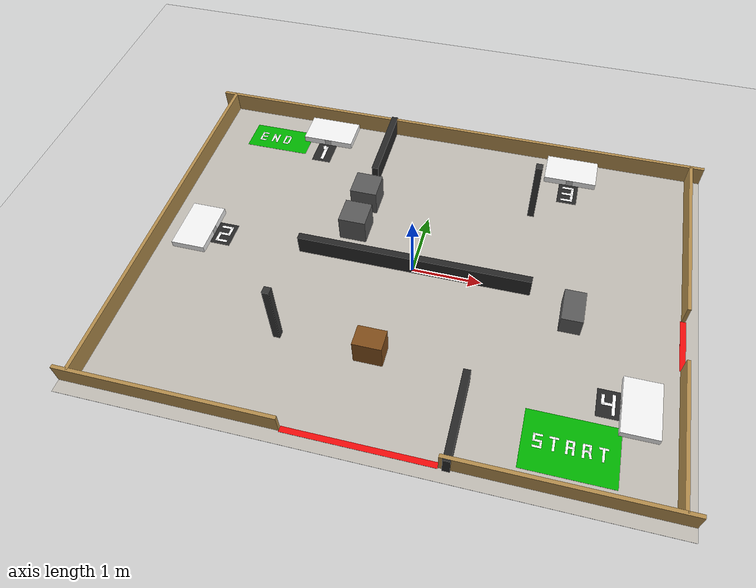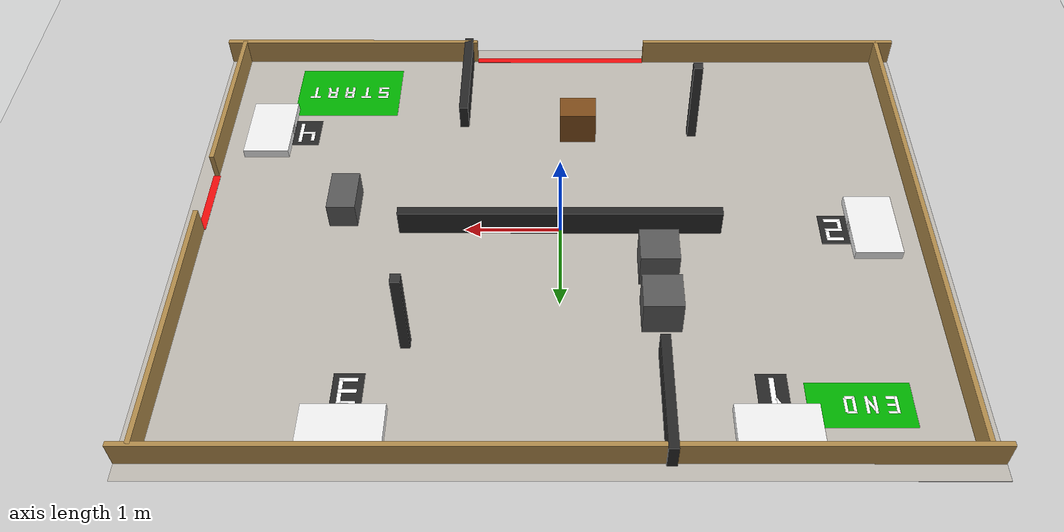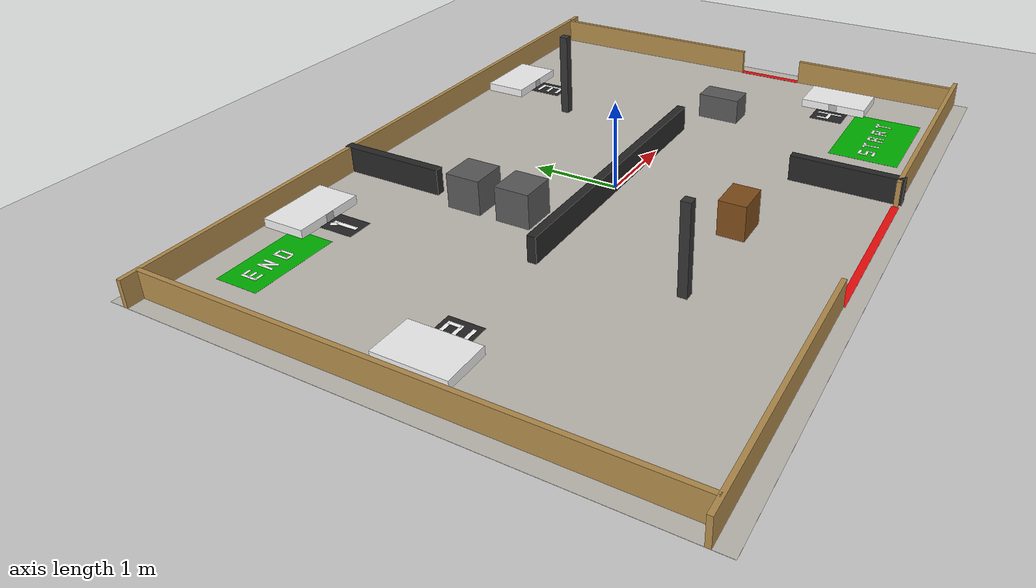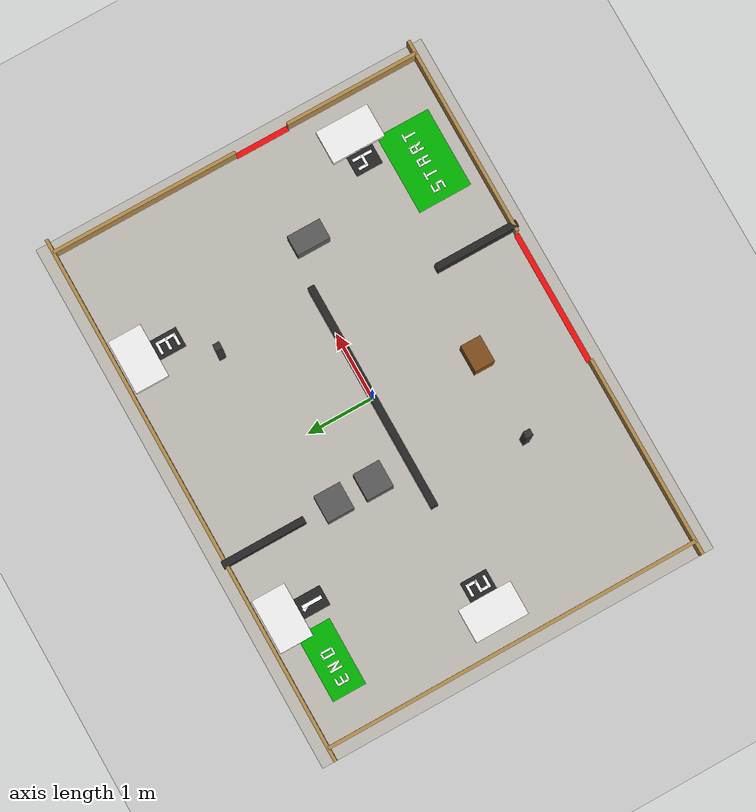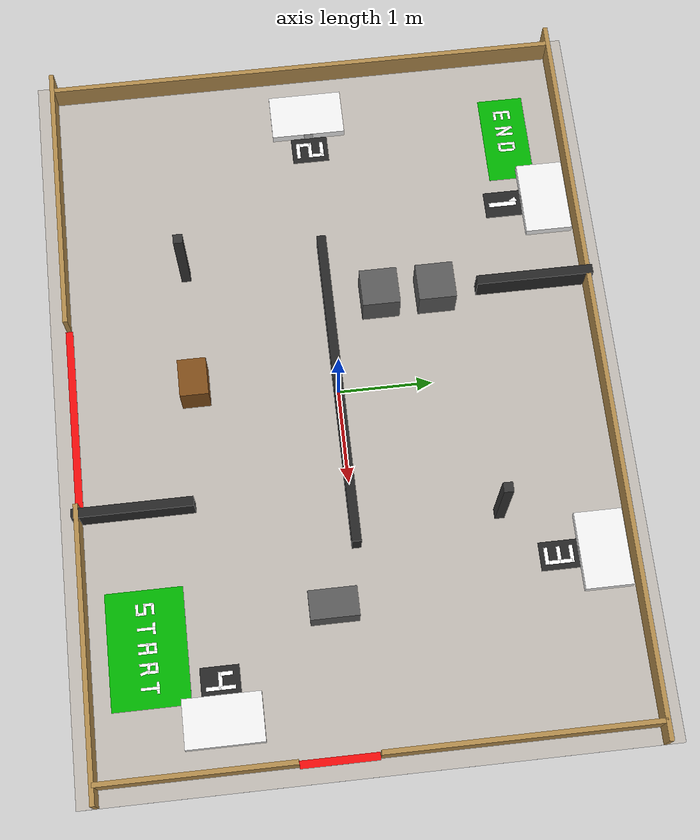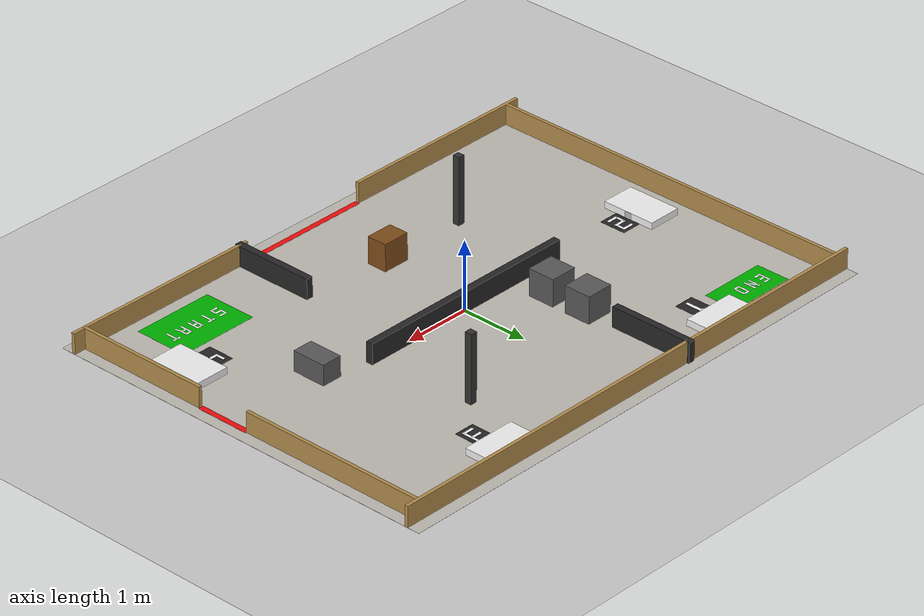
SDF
<sdf version="1.6">
 <world name="robocup_arena">
  <physics type="ode"><max_step_size>0.001</max_step_size><real_time_factor>1</real_time_factor></physics>
  <plugin name="gazebo_ros_state" filename="libgazebo_ros_state.so">
   <ros><namespace>/gazebo</namespace></ros>
   <update_rate>0.0</update_rate>
  </plugin>
  <include><uri>model://sun</uri></include>
  <include><uri>model://ground_plane</uri></include>
  <model name="arena_floor">
   <static>true</static>
   <pose>0 0 0.001 0 0 0</pose>
   <link name="link">
    <visual name="v">
     <geometry><box><size>8 6 0.002</size></box></geometry>
     <material><ambient>0.75 0.73 0.70 1</ambient><diffuse>0.75 0.73 0.70 1</diffuse></material>
    </visual>
   </link>
  </model>
  <model name="wall_north">
   <static>true</static>
   <pose>0 2.8 0.15 0 0 0</pose>
   <link name="link">
    <collision name="c"><geometry><box><size>8 0.05 0.3</size></box></geometry></collision>
    <visual name="v">
     <geometry><box><size>8 0.05 0.3</size></box></geometry>
     <material><ambient>0.7 0.55 0.3 1</ambient><diffuse>0.7 0.55 0.3 1</diffuse></material>
    </visual>
   </link>
  </model>
  <model name="wall_south_left">
   <static>true</static>
   <pose>-2.5 -2.8 0.15 0 0 0</pose>
   <link name="link">
    <collision name="c"><geometry><box><size>3 0.05 0.3</size></box></geometry></collision>
    <visual name="v">
     <geometry><box><size>3 0.05 0.3</size></box></geometry>
     <material><ambient>0.7 0.55 0.3 1</ambient><diffuse>0.7 0.55 0.3 1</diffuse></material>
    </visual>
   </link>
  </model>
  <model name="wall_south_right">
   <static>true</static>
   <pose>2.5 -2.8 0.15 0 0 0</pose>
   <link name="link">
    <collision name="c"><geometry><box><size>3 0.05 0.3</size></box></geometry></collision>
    <visual name="v">
     <geometry><box><size>3 0.05 0.3</size></box></geometry>
     <material><ambient>0.7 0.55 0.3 1</ambient><diffuse>0.7 0.55 0.3 1</diffuse></material>
    </visual>
   </link>
  </model>
  <model name="red_tape_south">
   <static>true</static>
   <pose>0 -2.8 0.003 0 0 0</pose>
   <link name="link">
    <visual name="v">
     <geometry><box><size>2 0.08 0.003</size></box></geometry>
     <material><ambient>0.95 0.05 0.05 1</ambient><diffuse>0.95 0.05 0.05 1</diffuse></material>
    </visual>
   </link>
  </model>
  <model name="wall_east_top">
   <static>true</static>
   <pose>3.8 1.4 0.15 0 0 0</pose>
   <link name="link">
    <collision name="c"><geometry><box><size>0.05 2.8 0.3</size></box></geometry></collision>
    <visual name="v">
     <geometry><box><size>0.05 2.8 0.3</size></box></geometry>
     <material><ambient>0.7 0.55 0.3 1</ambient><diffuse>0.7 0.55 0.3 1</diffuse></material>
    </visual>
   </link>
  </model>
  <model name="wall_east_bottom">
   <static>true</static>
   <pose>3.8 -1.8 0.15 0 0 0</pose>
   <link name="link">
    <collision name="c"><geometry><box><size>0.05 2.0 0.3</size></box></geometry></collision>
    <visual name="v">
     <geometry><box><size>0.05 2.0 0.3</size></box></geometry>
     <material><ambient>0.7 0.55 0.3 1</ambient><diffuse>0.7 0.55 0.3 1</diffuse></material>
    </visual>
   </link>
  </model>
  <model name="red_tape_east">
   <static>true</static>
   <pose>3.8 -0.4 0.003 0 0 1.57</pose>
   <link name="link">
    <visual name="v">
     <geometry><box><size>0.8 0.08 0.003</size></box></geometry>
     <material><ambient>0.95 0.05 0.05 1</ambient><diffuse>0.95 0.05 0.05 1</diffuse></material>
    </visual>
   </link>
  </model>
  <model name="wall_west">
   <static>true</static>
   <pose>-3.8 0 0.15 0 0 0</pose>
   <link name="link">
    <collision name="c"><geometry><box><size>0.05 5.6 0.3</size></box></geometry></collision>
    <visual name="v">
     <geometry><box><size>0.05 5.6 0.3</size></box></geometry>
     <material><ambient>0.7 0.55 0.3 1</ambient><diffuse>0.7 0.55 0.3 1</diffuse></material>
    </visual>
   </link>
  </model>
  <model name="iwall_island">
   <static>true</static>
   <pose>0 0 0.15 0 0 0</pose>
   <link name="link">
    <collision name="c"><geometry><box><size>3.4 0.10 0.3</size></box></geometry></collision>
    <visual name="v">
     <geometry><box><size>3.4 0.10 0.3</size></box></geometry>
     <material><ambient>0.15 0.15 0.15 1</ambient><diffuse>0.15 0.15 0.15 1</diffuse></material>
    </visual>
   </link>
  </model>
  <model name="iwall_stub_n">
   <static>true</static>
   <pose>-1.0 2.225 0.15 0 0 0</pose>
   <link name="link">
    <collision name="c"><geometry><box><size>0.10 1.25 0.3</size></box></geometry></collision>
    <visual name="v">
     <geometry><box><size>0.10 1.25 0.3</size></box></geometry>
     <material><ambient>0.15 0.15 0.15 1</ambient><diffuse>0.15 0.15 0.15 1</diffuse></material>
    </visual>
   </link>
  </model>
  <model name="iwall_stub_s">
   <static>true</static>
   <pose>1.1 -2.225 0.15 0 0 0</pose>
   <link name="link">
    <collision name="c"><geometry><box><size>0.10 1.25 0.3</size></box></geometry></collision>
    <visual name="v">
     <geometry><box><size>0.10 1.25 0.3</size></box></geometry>
     <material><ambient>0.15 0.15 0.15 1</ambient><diffuse>0.15 0.15 0.15 1</diffuse></material>
    </visual>
   </link>
  </model>
  <model name="table_ws01">
   <static>true</static>
   <pose>-2.0 2.5 0.05 0 0 0</pose>
   <link name="link">
    <collision name="c"><geometry><box><size>0.8 0.5 0.1</size></box></geometry></collision>
    <visual name="v">
     <geometry><box><size>0.8 0.5 0.1</size></box></geometry>
     <material><ambient>0.95 0.95 0.95 1</ambient><diffuse>0.95 0.95 0.95 1</diffuse></material>
    </visual>
   </link>
  </model>
  <model name="table_ws02">
   <static>true</static>
   <pose>-3.3 0.0 0.05 0 0 0</pose>
   <link name="link">
    <collision name="c"><geometry><box><size>0.5 0.8 0.1</size></box></geometry></collision>
    <visual name="v">
     <geometry><box><size>0.5 0.8 0.1</size></box></geometry>
     <material><ambient>0.95 0.95 0.95 1</ambient><diffuse>0.95 0.95 0.95 1</diffuse></material>
    </visual>
   </link>
  </model>
  <model name="table_ws03">
   <static>true</static>
   <pose>2.0 2.5 0.05 0 0 0</pose>
   <link name="link">
    <collision name="c"><geometry><box><size>0.8 0.5 0.1</size></box></geometry></collision>
    <visual name="v">
     <geometry><box><size>0.8 0.5 0.1</size></box></geometry>
     <material><ambient>0.95 0.95 0.95 1</ambient><diffuse>0.95 0.95 0.95 1</diffuse></material>
    </visual>
   </link>
  </model>
  <model name="table_ws04">
   <static>true</static>
   <pose>3.3 -1.5 0.05 0 0 0</pose>
   <link name="link">
    <collision name="c"><geometry><box><size>0.5 0.8 0.1</size></box></geometry></collision>
    <visual name="v">
     <geometry><box><size>0.5 0.8 0.1</size></box></geometry>
     <material><ambient>0.95 0.95 0.95 1</ambient><diffuse>0.95 0.95 0.95 1</diffuse></material>
    </visual>
   </link>
  </model>
  <model name="pillar1">
   <static>true</static>
   <pose>-1.5 -1.5 0.5 0 0 0</pose>
   <link name="l">
    <collision name="c"><geometry><box><size>0.1 0.1 1.0</size></box></geometry></collision>
    <visual name="v">
     <geometry><box><size>0.1 0.1 1.0</size></box></geometry>
     <material><ambient>0.2 0.2 0.2 1</ambient><diffuse>0.2 0.2 0.2 1</diffuse></material>
    </visual>
   </link>
  </model>
  <model name="pillar2">
   <static>true</static>
   <pose>1.5 1.5 0.5 0 0 0</pose>
   <link name="l">
    <collision name="c"><geometry><box><size>0.1 0.1 1.0</size></box></geometry></collision>
    <visual name="v">
     <geometry><box><size>0.1 0.1 1.0</size></box></geometry>
     <material><ambient>0.2 0.2 0.2 1</ambient><diffuse>0.2 0.2 0.2 1</diffuse></material>
    </visual>
   </link>
  </model>
  <model name="apriltag_ws01">
   <static>true</static>
   <pose>-2.000 2.248 0.05 0 0 0</pose>
   <link name="link">
    <visual name="tag">
     <geometry><box><size>0.10 0.001 0.10</size></box></geometry>
     <material>
      <script>
       <uri>model://robocup_tags/materials/scripts</uri>
       <uri>model://robocup_tags/materials/textures</uri>
       <name>RoboCupTags/Tag1</name>
      </script>
     </material>
    </visual>
   </link>
  </model>
  <model name="apriltag_ws02">
   <static>true</static>
   <pose>-3.048 0.000 0.05 0 0 1.5708</pose>
   <link name="link">
    <visual name="tag">
     <geometry><box><size>0.10 0.001 0.10</size></box></geometry>
     <material>
      <script>
       <uri>model://robocup_tags/materials/scripts</uri>
       <uri>model://robocup_tags/materials/textures</uri>
       <name>RoboCupTags/Tag2</name>
      </script>
     </material>
    </visual>
   </link>
  </model>
  <model name="apriltag_ws03">
   <static>true</static>
   <pose>2.000 2.248 0.05 0 0 0</pose>
   <link name="link">
    <visual name="tag">
     <geometry><box><size>0.10 0.001 0.10</size></box></geometry>
     <material>
      <script>
       <uri>model://robocup_tags/materials/scripts</uri>
       <uri>model://robocup_tags/materials/textures</uri>
       <name>RoboCupTags/Tag3</name>
      </script>
     </material>
    </visual>
   </link>
  </model>
  <model name="apriltag_ws04">
   <static>true</static>
   <pose>3.048 -1.500 0.05 0 0 -1.5708</pose>
   <link name="link">
    <visual name="tag">
     <geometry><box><size>0.10 0.001 0.10</size></box></geometry>
     <material>
      <script>
       <uri>model://robocup_tags/materials/scripts</uri>
       <uri>model://robocup_tags/materials/textures</uri>
       <name>RoboCupTags/Tag4</name>
      </script>
     </material>
    </visual>
   </link>
  </model>
  <model name="num1">
   <static>true</static>
   <pose>-2.0 2.05 0.003 0 0 0</pose>
   <link name="link">
    <visual name="bg">
     <geometry><box><size>0.3 0.4 0.002</size></box></geometry>
     <material><ambient>0.15 0.15 0.15 1</ambient><diffuse>0.15 0.15 0.15 1</diffuse></material>
    </visual>
    <visual name="v1">
     <pose>0 0 0.001 0 0 0</pose>
     <geometry><box><size>0.05 0.3 0.001</size></box></geometry>
     <material><ambient>1 1 1 1</ambient><diffuse>1 1 1 1</diffuse></material>
    </visual>
    <visual name="v2">
     <pose>-0.03 0.12 0.001 0 0 0.5</pose>
     <geometry><box><size>0.05 0.08 0.001</size></box></geometry>
     <material><ambient>1 1 1 1</ambient><diffuse>1 1 1 1</diffuse></material>
    </visual>
   </link>
  </model>
  <model name="num2">
   <static>true</static>
   <pose>-2.9 0.0 0.003 0 0 0</pose>
   <link name="link">
    <visual name="bg">
     <geometry><box><size>0.3 0.4 0.002</size></box></geometry>
     <material><ambient>0.15 0.15 0.15 1</ambient><diffuse>0.15 0.15 0.15 1</diffuse></material>
    </visual>
    <visual name="top">
     <pose>0 0.13 0.001 0 0 0</pose>
     <geometry><box><size>0.18 0.04 0.001</size></box></geometry>
     <material><ambient>1 1 1 1</ambient><diffuse>1 1 1 1</diffuse></material>
    </visual>
    <visual name="mid">
     <pose>0 0 0.001 0 0 0</pose>
     <geometry><box><size>0.18 0.04 0.001</size></box></geometry>
     <material><ambient>1 1 1 1</ambient><diffuse>1 1 1 1</diffuse></material>
    </visual>
    <visual name="bot">
     <pose>0 -0.13 0.001 0 0 0</pose>
     <geometry><box><size>0.18 0.04 0.001</size></box></geometry>
     <material><ambient>1 1 1 1</ambient><diffuse>1 1 1 1</diffuse></material>
    </visual>
    <visual name="rt">
     <pose>0.07 0.065 0.001 0 0 0</pose>
     <geometry><box><size>0.04 0.13 0.001</size></box></geometry>
     <material><ambient>1 1 1 1</ambient><diffuse>1 1 1 1</diffuse></material>
    </visual>
    <visual name="lb">
     <pose>-0.07 -0.065 0.001 0 0 0</pose>
     <geometry><box><size>0.04 0.13 0.001</size></box></geometry>
     <material><ambient>1 1 1 1</ambient><diffuse>1 1 1 1</diffuse></material>
    </visual>
   </link>
  </model>
  <model name="num3">
   <static>true</static>
   <pose>2.0 2.05 0.003 0 0 0</pose>
   <link name="link">
    <visual name="bg">
     <geometry><box><size>0.3 0.4 0.002</size></box></geometry>
     <material><ambient>0.15 0.15 0.15 1</ambient><diffuse>0.15 0.15 0.15 1</diffuse></material>
    </visual>
    <visual name="top">
     <pose>0 0.13 0.001 0 0 0</pose>
     <geometry><box><size>0.18 0.04 0.001</size></box></geometry>
     <material><ambient>1 1 1 1</ambient><diffuse>1 1 1 1</diffuse></material>
    </visual>
    <visual name="mid">
     <pose>0 0 0.001 0 0 0</pose>
     <geometry><box><size>0.18 0.04 0.001</size></box></geometry>
     <material><ambient>1 1 1 1</ambient><diffuse>1 1 1 1</diffuse></material>
    </visual>
    <visual name="bot">
     <pose>0 -0.13 0.001 0 0 0</pose>
     <geometry><box><size>0.18 0.04 0.001</size></box></geometry>
     <material><ambient>1 1 1 1</ambient><diffuse>1 1 1 1</diffuse></material>
    </visual>
    <visual name="rt">
     <pose>0.07 0.065 0.001 0 0 0</pose>
     <geometry><box><size>0.04 0.13 0.001</size></box></geometry>
     <material><ambient>1 1 1 1</ambient><diffuse>1 1 1 1</diffuse></material>
    </visual>
    <visual name="rb">
     <pose>0.07 -0.065 0.001 0 0 0</pose>
     <geometry><box><size>0.04 0.13 0.001</size></box></geometry>
     <material><ambient>1 1 1 1</ambient><diffuse>1 1 1 1</diffuse></material>
    </visual>
   </link>
  </model>
  <model name="num4">
   <static>true</static>
   <pose>2.9 -1.5 0.003 0 0 0</pose>
   <link name="link">
    <visual name="bg">
     <geometry><box><size>0.3 0.4 0.002</size></box></geometry>
     <material><ambient>0.15 0.15 0.15 1</ambient><diffuse>0.15 0.15 0.15 1</diffuse></material>
    </visual>
    <visual name="lt">
     <pose>-0.07 0.065 0.001 0 0 0</pose>
     <geometry><box><size>0.04 0.13 0.001</size></box></geometry>
     <material><ambient>1 1 1 1</ambient><diffuse>1 1 1 1</diffuse></material>
    </visual>
    <visual name="mid">
     <pose>0 0 0.001 0 0 0</pose>
     <geometry><box><size>0.18 0.04 0.001</size></box></geometry>
     <material><ambient>1 1 1 1</ambient><diffuse>1 1 1 1</diffuse></material>
    </visual>
    <visual name="rf">
     <pose>0.07 0 0.001 0 0 0</pose>
     <geometry><box><size>0.04 0.3 0.001</size></box></geometry>
     <material><ambient>1 1 1 1</ambient><diffuse>1 1 1 1</diffuse></material>
    </visual>
   </link>
  </model>
  <model name="start_area">
   <static>true</static>
   <pose>2.5 -2.2 0.002 0 0 0</pose>
   <link name="link">
    <visual name="bg">
     <geometry><box><size>1.2 0.8 0.002</size></box></geometry>
     <material><ambient>0 0.7 0 1</ambient><diffuse>0 0.7 0 1</diffuse></material>
    </visual>
   </link>
  </model>
  <model name="start_S">
   <static>true</static>
   <pose>2.1 -2.2 0.004 0 0 0</pose>
   <link name="l">
    <visual name="top">
     <pose>0 0.08 0 0 0 0</pose>
     <geometry><box><size>0.12 0.03 0.001</size></box></geometry>
     <material><ambient>1 1 1 1</ambient><diffuse>1 1 1 1</diffuse></material>
    </visual>
    <visual name="mid">
     <geometry><box><size>0.12 0.03 0.001</size></box></geometry>
     <material><ambient>1 1 1 1</ambient><diffuse>1 1 1 1</diffuse></material>
    </visual>
    <visual name="bot">
     <pose>0 -0.08 0 0 0 0</pose>
     <geometry><box><size>0.12 0.03 0.001</size></box></geometry>
     <material><ambient>1 1 1 1</ambient><diffuse>1 1 1 1</diffuse></material>
    </visual>
    <visual name="lt">
     <pose>-0.045 0.04 0 0 0 0</pose>
     <geometry><box><size>0.03 0.08 0.001</size></box></geometry>
     <material><ambient>1 1 1 1</ambient><diffuse>1 1 1 1</diffuse></material>
    </visual>
    <visual name="rb">
     <pose>0.045 -0.04 0 0 0 0</pose>
     <geometry><box><size>0.03 0.08 0.001</size></box></geometry>
     <material><ambient>1 1 1 1</ambient><diffuse>1 1 1 1</diffuse></material>
    </visual>
   </link>
  </model>
  <model name="start_T">
   <static>true</static>
   <pose>2.3 -2.2 0.004 0 0 0</pose>
   <link name="l">
    <visual name="top">
     <pose>0 0.08 0 0 0 0</pose>
     <geometry><box><size>0.12 0.03 0.001</size></box></geometry>
     <material><ambient>1 1 1 1</ambient><diffuse>1 1 1 1</diffuse></material>
    </visual>
    <visual name="stem">
     <geometry><box><size>0.03 0.19 0.001</size></box></geometry>
     <material><ambient>1 1 1 1</ambient><diffuse>1 1 1 1</diffuse></material>
    </visual>
   </link>
  </model>
  <model name="start_A">
   <static>true</static>
   <pose>2.5 -2.2 0.004 0 0 0</pose>
   <link name="l">
    <visual name="left">
     <pose>-0.04 0 0 0 0 0</pose>
     <geometry><box><size>0.03 0.19 0.001</size></box></geometry>
     <material><ambient>1 1 1 1</ambient><diffuse>1 1 1 1</diffuse></material>
    </visual>
    <visual name="right">
     <pose>0.04 0 0 0 0 0</pose>
     <geometry><box><size>0.03 0.19 0.001</size></box></geometry>
     <material><ambient>1 1 1 1</ambient><diffuse>1 1 1 1</diffuse></material>
    </visual>
    <visual name="top">
     <pose>0 0.08 0 0 0 0</pose>
     <geometry><box><size>0.11 0.03 0.001</size></box></geometry>
     <material><ambient>1 1 1 1</ambient><diffuse>1 1 1 1</diffuse></material>
    </visual>
    <visual name="mid">
     <geometry><box><size>0.11 0.03 0.001</size></box></geometry>
     <material><ambient>1 1 1 1</ambient><diffuse>1 1 1 1</diffuse></material>
    </visual>
   </link>
  </model>
  <model name="start_R">
   <static>true</static>
   <pose>2.7 -2.2 0.004 0 0 0</pose>
   <link name="l">
    <visual name="stem">
     <pose>-0.04 0 0 0 0 0</pose>
     <geometry><box><size>0.03 0.19 0.001</size></box></geometry>
     <material><ambient>1 1 1 1</ambient><diffuse>1 1 1 1</diffuse></material>
    </visual>
    <visual name="top">
     <pose>0 0.08 0 0 0 0</pose>
     <geometry><box><size>0.11 0.03 0.001</size></box></geometry>
     <material><ambient>1 1 1 1</ambient><diffuse>1 1 1 1</diffuse></material>
    </visual>
    <visual name="mid">
     <geometry><box><size>0.11 0.03 0.001</size></box></geometry>
     <material><ambient>1 1 1 1</ambient><diffuse>1 1 1 1</diffuse></material>
    </visual>
    <visual name="rt">
     <pose>0.04 0.04 0 0 0 0</pose>
     <geometry><box><size>0.03 0.08 0.001</size></box></geometry>
     <material><ambient>1 1 1 1</ambient><diffuse>1 1 1 1</diffuse></material>
    </visual>
    <visual name="leg">
     <pose>0.04 -0.04 0 0 0 0.3</pose>
     <geometry><box><size>0.03 0.1 0.001</size></box></geometry>
     <material><ambient>1 1 1 1</ambient><diffuse>1 1 1 1</diffuse></material>
    </visual>
   </link>
  </model>
  <model name="start_T2">
   <static>true</static>
   <pose>2.9 -2.2 0.004 0 0 0</pose>
   <link name="l">
    <visual name="top">
     <pose>0 0.08 0 0 0 0</pose>
     <geometry><box><size>0.12 0.03 0.001</size></box></geometry>
     <material><ambient>1 1 1 1</ambient><diffuse>1 1 1 1</diffuse></material>
    </visual>
    <visual name="stem">
     <geometry><box><size>0.03 0.19 0.001</size></box></geometry>
     <material><ambient>1 1 1 1</ambient><diffuse>1 1 1 1</diffuse></material>
    </visual>
   </link>
  </model>
  <model name="goal_area">
   <static>true</static>
   <pose>-2.8 2.2 0.002 0 0 0</pose>
   <link name="link">
    <visual name="bg">
     <geometry><box><size>1.0 0.5 0.002</size></box></geometry>
     <material><ambient>0 0.7 0 1</ambient><diffuse>0 0.7 0 1</diffuse></material>
    </visual>
   </link>
  </model>
  <model name="end_E">
   <static>true</static>
   <pose>-3.1 2.2 0.004 0 0 0</pose>
   <link name="l">
    <visual name="stem">
     <pose>-0.04 0 0 0 0 0</pose>
     <geometry><box><size>0.03 0.19 0.001</size></box></geometry>
     <material><ambient>1 1 1 1</ambient><diffuse>1 1 1 1</diffuse></material>
    </visual>
    <visual name="top">
     <pose>0 0.08 0 0 0 0</pose>
     <geometry><box><size>0.11 0.03 0.001</size></box></geometry>
     <material><ambient>1 1 1 1</ambient><diffuse>1 1 1 1</diffuse></material>
    </visual>
    <visual name="mid">
     <geometry><box><size>0.11 0.03 0.001</size></box></geometry>
     <material><ambient>1 1 1 1</ambient><diffuse>1 1 1 1</diffuse></material>
    </visual>
    <visual name="bot">
     <pose>0 -0.08 0 0 0 0</pose>
     <geometry><box><size>0.11 0.03 0.001</size></box></geometry>
     <material><ambient>1 1 1 1</ambient><diffuse>1 1 1 1</diffuse></material>
    </visual>
   </link>
  </model>
  <model name="end_N">
   <static>true</static>
   <pose>-2.9 2.2 0.004 0 0 0</pose>
   <link name="l">
    <visual name="left">
     <pose>-0.04 0 0 0 0 0</pose>
     <geometry><box><size>0.03 0.19 0.001</size></box></geometry>
     <material><ambient>1 1 1 1</ambient><diffuse>1 1 1 1</diffuse></material>
    </visual>
    <visual name="right">
     <pose>0.04 0 0 0 0 0</pose>
     <geometry><box><size>0.03 0.19 0.001</size></box></geometry>
     <material><ambient>1 1 1 1</ambient><diffuse>1 1 1 1</diffuse></material>
    </visual>
    <visual name="diag">
     <pose>0 0 0 0 0 0.5</pose>
     <geometry><box><size>0.03 0.2 0.001</size></box></geometry>
     <material><ambient>1 1 1 1</ambient><diffuse>1 1 1 1</diffuse></material>
    </visual>
   </link>
  </model>
  <model name="end_D">
   <static>true</static>
   <pose>-2.7 2.2 0.004 0 0 0</pose>
   <link name="l">
    <visual name="stem">
     <pose>-0.04 0 0 0 0 0</pose>
     <geometry><box><size>0.03 0.19 0.001</size></box></geometry>
     <material><ambient>1 1 1 1</ambient><diffuse>1 1 1 1</diffuse></material>
    </visual>
    <visual name="top">
     <pose>0 0.08 0 0 0 0</pose>
     <geometry><box><size>0.08 0.03 0.001</size></box></geometry>
     <material><ambient>1 1 1 1</ambient><diffuse>1 1 1 1</diffuse></material>
    </visual>
    <visual name="bot">
     <pose>0 -0.08 0 0 0 0</pose>
     <geometry><box><size>0.08 0.03 0.001</size></box></geometry>
     <material><ambient>1 1 1 1</ambient><diffuse>1 1 1 1</diffuse></material>
    </visual>
    <visual name="right">
     <pose>0.04 0 0 0 0 0</pose>
     <geometry><box><size>0.03 0.16 0.001</size></box></geometry>
     <material><ambient>1 1 1 1</ambient><diffuse>1 1 1 1</diffuse></material>
    </visual>
   </link>
  </model>
  <model name="obs_1">
   <static>true</static>
   <pose>-1.0 0.55 0.2 0 0 0</pose>
   <link name="link">
    <collision name="c"><geometry><box><size>0.4 0.4 0.4</size></box></geometry></collision>
    <visual name="v">
     <geometry><box><size>0.4 0.4 0.4</size></box></geometry>
     <material><ambient>0.35 0.35 0.35 1</ambient><diffuse>0.35 0.35 0.35 1</diffuse></material>
    </visual>
   </link>
  </model>
  <model name="obs_2">
   <static>true</static>
   <pose>-1.0 1.15 0.2 0 0 0</pose>
   <link name="link">
    <collision name="c"><geometry><box><size>0.4 0.4 0.4</size></box></geometry></collision>
    <visual name="v">
     <geometry><box><size>0.4 0.4 0.4</size></box></geometry>
     <material><ambient>0.35 0.35 0.35 1</ambient><diffuse>0.35 0.35 0.35 1</diffuse></material>
    </visual>
   </link>
  </model>
  <model name="obs_3">
   <static>true</static>
   <pose>-0.2 -1.5 0.2 0 0 0</pose>
   <link name="link">
    <collision name="c"><geometry><box><size>0.4 0.3 0.4</size></box></geometry></collision>
    <visual name="v">
     <geometry><box><size>0.4 0.3 0.4</size></box></geometry>
     <material><ambient>0.5 0.3 0.1 1</ambient><diffuse>0.5 0.3 0.1 1</diffuse></material>
    </visual>
   </link>
  </model>
  <model name="obs_4">
   <static>true</static>
   <pose>2.3 -0.3 0.15 0 0 0</pose>
   <link name="link">
    <collision name="c"><geometry><box><size>0.3 0.5 0.3</size></box></geometry></collision>
    <visual name="v">
     <geometry><box><size>0.3 0.5 0.3</size></box></geometry>
     <material><ambient>0.35 0.35 0.35 1</ambient><diffuse>0.35 0.35 0.35 1</diffuse></material>
    </visual>
   </link>
  </model>
 </world>
</sdf>
